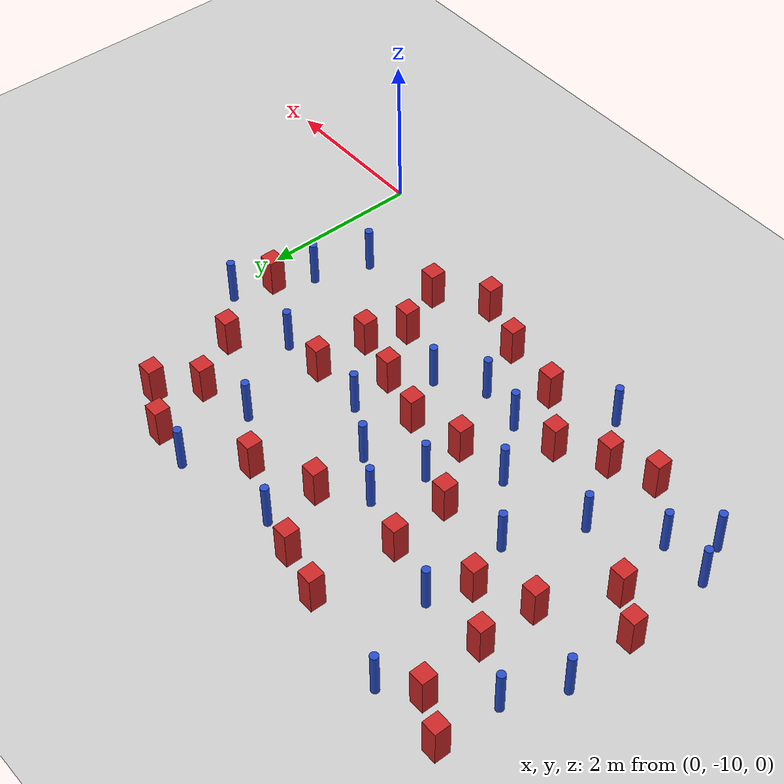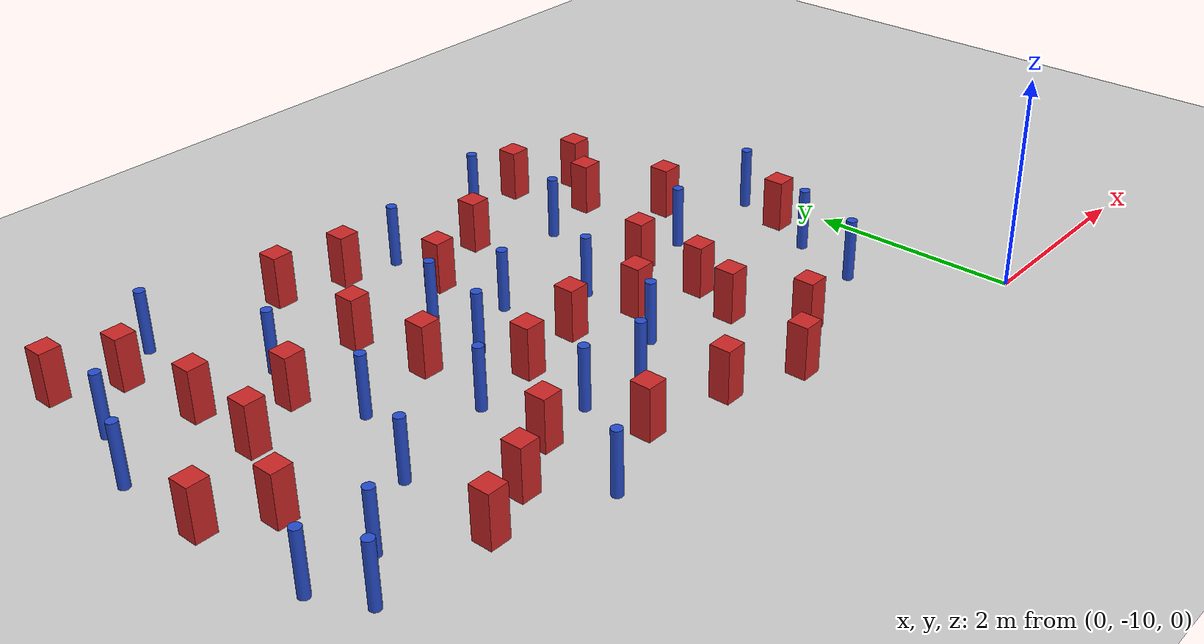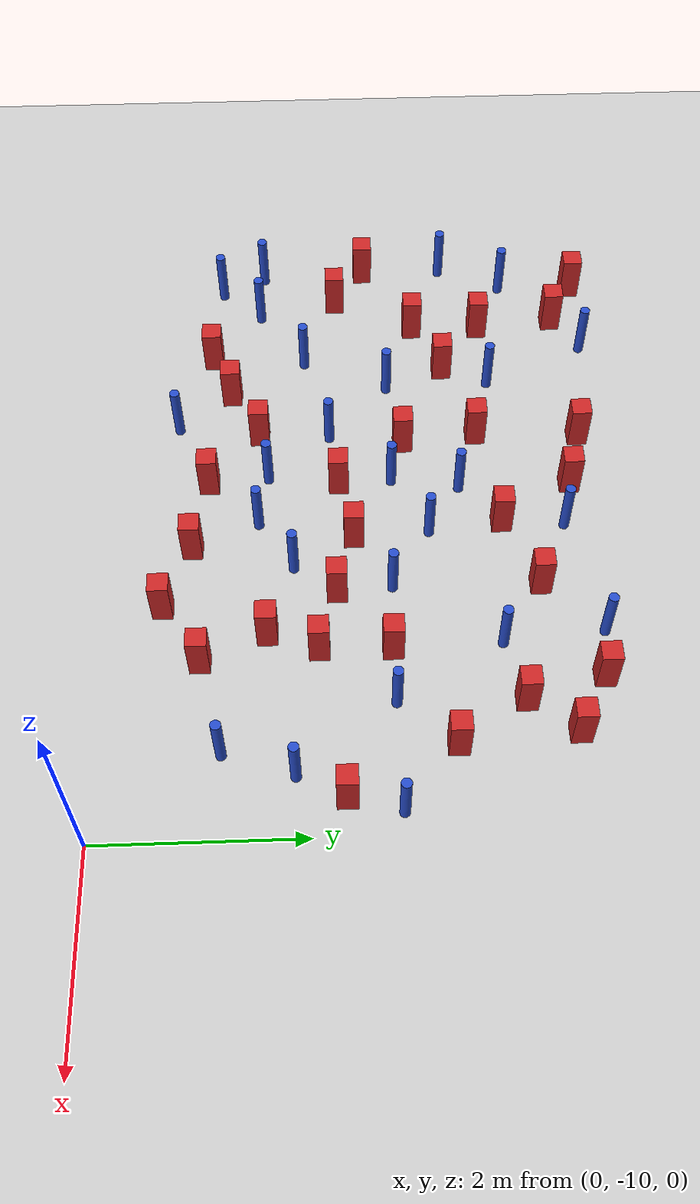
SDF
<sdf version="1.6">
 <world name="default">
  <model name="ground_plane">
   <static>1</static>
   <link name="link">
    <collision name="collision">
     <geometry><plane><normal>0 0 1</normal><size>100 100</size></plane></geometry>
     <surface><friction><ode><mu>100</mu><mu2>50</mu2></ode></friction></surface>
    </collision>
    <visual name="visual">
     <cast_shadows>0</cast_shadows>
     <geometry><plane><normal>0 0 1</normal><size>100 100</size></plane></geometry>
     <material>
      <ambient>1.0 1.0 1.0 1.0</ambient>
      <diffuse>0.8 0.8 0.8 1.0</diffuse>
      <specular>0.01 0.01 0.01 1.000000</specular>
     </material>
    </visual>
   </link>
  </model>
  <model name="pole_obstacle3">
   <static>true</static>
   <pose>-0.223066158163 -7.18615148607 2.88873142074e-08 -9.90536689703e-09 4.60219948992e-07 -1.20965994959e-07</pose>
   <link name="link">
    <pose>0 0 0.3 0 -0 0</pose>
    <inertial>
     <mass>1</mass>
     <inertia><ixx>0.145833</ixx><ixy>0</ixy><ixz>0</ixz><iyy>0.145833</iyy><iyz>0</iyz><izz>0.125</izz></inertia>
    </inertial>
    <collision name="collision">
     <geometry><cylinder><radius>0.05</radius><length>.6</length></cylinder></geometry>
    </collision>
    <visual name="visual">
     <geometry><cylinder><radius>0.05</radius><length>.6</length></cylinder></geometry>
     <material>
      <script><name>Gazebo/Blue</name><uri>file://media/materials/scripts/gazebo.material</uri></script>
     </material>
    </visual>
   </link>
  </model>
  <model name="pole_obstacle4">
   <static>true</static>
   <pose>-5.26204661042 -6.04021006836 2.88873142074e-08 -9.90536690842e-09 4.60219948965e-07 -1.20965994976e-07</pose>
   <link name="link">
    <pose>0 0 0.3 0 -0 0</pose>
    <inertial>
     <mass>1</mass>
     <inertia><ixx>0.145833</ixx><ixy>0</ixy><ixz>0</ixz><iyy>0.145833</iyy><iyz>0</iyz><izz>0.125</izz></inertia>
    </inertial>
    <collision name="collision">
     <geometry><cylinder><radius>0.05</radius><length>.6</length></cylinder></geometry>
    </collision>
    <visual name="visual">
     <geometry><cylinder><radius>0.05</radius><length>.6</length></cylinder></geometry>
     <material>
      <script><name>Gazebo/Blue</name><uri>file://media/materials/scripts/gazebo.material</uri></script>
     </material>
    </visual>
   </link>
  </model>
  <model name="pole_obstacle9">
   <static>true</static>
   <pose>-5.60788954177 -8.01371110021 2.88873142074e-08 -9.9053669103e-09 4.60219948961e-07 -1.20965994981e-07</pose>
   <link name="link">
    <pose>0 0 0.3 0 -0 0</pose>
    <inertial>
     <mass>1</mass>
     <inertia><ixx>0.145833</ixx><ixy>0</ixy><ixz>0</ixz><iyy>0.145833</iyy><iyz>0</iyz><izz>0.125</izz></inertia>
    </inertial>
    <collision name="collision">
     <geometry><cylinder><radius>0.05</radius><length>.6</length></cylinder></geometry>
    </collision>
    <visual name="visual">
     <geometry><cylinder><radius>0.05</radius><length>.6</length></cylinder></geometry>
     <material>
      <script><name>Gazebo/Blue</name><uri>file://media/materials/scripts/gazebo.material</uri></script>
     </material>
    </visual>
   </link>
  </model>
  <model name="square_post_obstacle12">
   <static>true</static>
   <pose>-6.67316931984 -4.98831161575 8.22691968438e-08 7.2212513382e-06 -7.54495500217e-07 2.29674213826e-05</pose>
   <link name="link">
    <pose>0 0 0.25 0 -0 0</pose>
    <inertial>
     <mass>100</mass>
     <inertia>
      <ixx>0.166667</ixx>
      <ixy>0</ixy>
      <ixz>0</ixz>
      <iyy>0.166667</iyy>
      <iyz>0</iyz>
      <izz>0.166667</izz>
     </inertia>
    </inertial>
    <collision name="collision"><geometry><box><size>.2 .2 .5</size></box></geometry></collision>
    <visual name="visual">
     <geometry><box><size>.2 .2 .5</size></box></geometry>
     <material>
      <script><name>Gazebo/Red</name><uri>file://media/materials/scripts/gazebo.material</uri></script>
     </material>
    </visual>
   </link>
  </model>
  <model name="pole_obstacle27">
   <static>true</static>
   <pose>-0.837502243684 -8.82556473664 2.88873142074e-08 -9.90536690779e-09 4.60219948967e-07 -1.20965994975e-07</pose>
   <link name="link">
    <pose>0 0 0.3 0 -0 0</pose>
    <inertial>
     <mass>1</mass>
     <inertia><ixx>0.145833</ixx><ixy>0</ixy><ixz>0</ixz><iyy>0.145833</iyy><iyz>0</iyz><izz>0.125</izz></inertia>
    </inertial>
    <collision name="collision">
     <geometry><cylinder><radius>0.05</radius><length>.6</length></cylinder></geometry>
    </collision>
    <visual name="visual">
     <geometry><cylinder><radius>0.05</radius><length>.6</length></cylinder></geometry>
     <material>
      <script><name>Gazebo/Blue</name><uri>file://media/materials/scripts/gazebo.material</uri></script>
     </material>
    </visual>
   </link>
  </model>
  <model name="square_post_obstacle20">
   <static>true</static>
   <pose>-3.22107593082 -7.54422062104 8.22691968438e-08 7.22125133819e-06 -7.54495500217e-07 2.29674213826e-05</pose>
   <link name="link">
    <pose>0 0 0.25 0 -0 0</pose>
    <inertial>
     <mass>100</mass>
     <inertia>
      <ixx>0.166667</ixx>
      <ixy>0</ixy>
      <ixz>0</ixz>
      <iyy>0.166667</iyy>
      <iyz>0</iyz>
      <izz>0.166667</izz>
     </inertia>
    </inertial>
    <collision name="collision"><geometry><box><size>.2 .2 .5</size></box></geometry></collision>
    <visual name="visual">
     <geometry><box><size>.2 .2 .5</size></box></geometry>
     <material>
      <script><name>Gazebo/Red</name><uri>file://media/materials/scripts/gazebo.material</uri></script>
     </material>
    </visual>
   </link>
  </model>
  <model name="square_post_obstacle21">
   <static>true</static>
   <pose>-1.81002682462 -9.04131203848 8.22691968438e-08 7.22125133819e-06 -7.54495500217e-07 2.29674213826e-05</pose>
   <link name="link">
    <pose>0 0 0.25 0 -0 0</pose>
    <inertial>
     <mass>100</mass>
     <inertia>
      <ixx>0.166667</ixx>
      <ixy>0</ixy>
      <ixz>0</ixz>
      <iyy>0.166667</iyy>
      <iyz>0</iyz>
      <izz>0.166667</izz>
     </inertia>
    </inertial>
    <collision name="collision"><geometry><box><size>.2 .2 .5</size></box></geometry></collision>
    <visual name="visual">
     <geometry><box><size>.2 .2 .5</size></box></geometry>
     <material>
      <script><name>Gazebo/Red</name><uri>file://media/materials/scripts/gazebo.material</uri></script>
     </material>
    </visual>
   </link>
  </model>
  <model name="pole_obstacle30">
   <static>true</static>
   <pose>-2.04442512107 -5.16710961635 2.88873142074e-08 -9.90536689575e-09 4.60219948995e-07 -1.20965994956e-07</pose>
   <link name="link">
    <pose>0 0 0.3 0 -0 0</pose>
    <inertial>
     <mass>1</mass>
     <inertia><ixx>0.145833</ixx><ixy>0</ixy><ixz>0</ixz><iyy>0.145833</iyy><iyz>0</iyz><izz>0.125</izz></inertia>
    </inertial>
    <collision name="collision">
     <geometry><cylinder><radius>0.05</radius><length>.6</length></cylinder></geometry>
    </collision>
    <visual name="visual">
     <geometry><cylinder><radius>0.05</radius><length>.6</length></cylinder></geometry>
     <material>
      <script><name>Gazebo/Blue</name><uri>file://media/materials/scripts/gazebo.material</uri></script>
     </material>
    </visual>
   </link>
  </model>
  <model name="pole_obstacle31">
   <static>true</static>
   <pose>-6.70476680831 -5.78684299509 2.88873142074e-08 -9.90536690842e-09 4.60219948965e-07 -1.20965994976e-07</pose>
   <link name="link">
    <pose>0 0 0.3 0 -0 0</pose>
    <inertial>
     <mass>1</mass>
     <inertia><ixx>0.145833</ixx><ixy>0</ixy><ixz>0</ixz><iyy>0.145833</iyy><iyz>0</iyz><izz>0.125</izz></inertia>
    </inertial>
    <collision name="collision">
     <geometry><cylinder><radius>0.05</radius><length>.6</length></cylinder></geometry>
    </collision>
    <visual name="visual">
     <geometry><cylinder><radius>0.05</radius><length>.6</length></cylinder></geometry>
     <material>
      <script><name>Gazebo/Blue</name><uri>file://media/materials/scripts/gazebo.material</uri></script>
     </material>
    </visual>
   </link>
  </model>
  <model name="square_post_obstacle24">
   <static>true</static>
   <pose>-4.47538757039 -5.15490344327 8.22691968438e-08 7.22125133819e-06 -7.54495500217e-07 2.29674213826e-05</pose>
   <link name="link">
    <pose>0 0 0.25 0 -0 0</pose>
    <inertial>
     <mass>100</mass>
     <inertia>
      <ixx>0.166667</ixx>
      <ixy>0</ixy>
      <ixz>0</ixz>
      <iyy>0.166667</iyy>
      <iyz>0</iyz>
      <izz>0.166667</izz>
     </inertia>
    </inertial>
    <collision name="collision"><geometry><box><size>.2 .2 .5</size></box></geometry></collision>
    <visual name="visual">
     <geometry><box><size>.2 .2 .5</size></box></geometry>
     <material>
      <script><name>Gazebo/Red</name><uri>file://media/materials/scripts/gazebo.material</uri></script>
     </material>
    </visual>
   </link>
  </model>
  <model name="pole_obstacle34">
   <static>true</static>
   <pose>-5.7441308817 -4.97167938966 2.88873142074e-08 -9.90536690842e-09 4.60219948965e-07 -1.20965994976e-07</pose>
   <link name="link">
    <pose>0 0 0.3 0 -0 0</pose>
    <inertial>
     <mass>1</mass>
     <inertia><ixx>0.145833</ixx><ixy>0</ixy><ixz>0</ixz><iyy>0.145833</iyy><iyz>0</iyz><izz>0.125</izz></inertia>
    </inertial>
    <collision name="collision">
     <geometry><cylinder><radius>0.05</radius><length>.6</length></cylinder></geometry>
    </collision>
    <visual name="visual">
     <geometry><cylinder><radius>0.05</radius><length>.6</length></cylinder></geometry>
     <material>
      <script><name>Gazebo/Blue</name><uri>file://media/materials/scripts/gazebo.material</uri></script>
     </material>
    </visual>
   </link>
  </model>
  <model name="square_post_obstacle34">
   <static>true</static>
   <pose>-6.50050032817 -7.66148644003 8.22691968438e-08 7.22125133819e-06 -7.54495500217e-07 2.29674213826e-05</pose>
   <link name="link">
    <pose>0 0 0.25 0 -0 0</pose>
    <inertial>
     <mass>100</mass>
     <inertia>
      <ixx>0.166667</ixx>
      <ixy>0</ixy>
      <ixz>0</ixz>
      <iyy>0.166667</iyy>
      <iyz>0</iyz>
      <izz>0.166667</izz>
     </inertia>
    </inertial>
    <collision name="collision"><geometry><box><size>.2 .2 .5</size></box></geometry></collision>
    <visual name="visual">
     <geometry><box><size>.2 .2 .5</size></box></geometry>
     <material>
      <script><name>Gazebo/Red</name><uri>file://media/materials/scripts/gazebo.material</uri></script>
     </material>
    </visual>
   </link>
  </model>
  <model name="pole_obstacle51">
   <static>true</static>
   <pose>-5.21629315074 -7.13534956996 2.88873142074e-08 -9.90536690842e-09 4.60219948965e-07 -1.20965994976e-07</pose>
   <link name="link">
    <pose>0 0 0.3 0 -0 0</pose>
    <inertial>
     <mass>1</mass>
     <inertia><ixx>0.145833</ixx><ixy>0</ixy><ixz>0</ixz><iyy>0.145833</iyy><iyz>0</iyz><izz>0.125</izz></inertia>
    </inertial>
    <collision name="collision">
     <geometry><cylinder><radius>0.05</radius><length>.6</length></cylinder></geometry>
    </collision>
    <visual name="visual">
     <geometry><cylinder><radius>0.05</radius><length>.6</length></cylinder></geometry>
     <material>
      <script><name>Gazebo/Blue</name><uri>file://media/materials/scripts/gazebo.material</uri></script>
     </material>
    </visual>
   </link>
  </model>
  <model name="square_post_obstacle41">
   <static>true</static>
   <pose>-6.15954790903 -5.25882143973 8.22691968438e-08 7.2212513382e-06 -7.54495500217e-07 2.29674213826e-05</pose>
   <link name="link">
    <pose>0 0 0.25 0 -0 0</pose>
    <inertial>
     <mass>100</mass>
     <inertia>
      <ixx>0.166667</ixx>
      <ixy>0</ixy>
      <ixz>0</ixz>
      <iyy>0.166667</iyy>
      <iyz>0</iyz>
      <izz>0.166667</izz>
     </inertia>
    </inertial>
    <collision name="collision"><geometry><box><size>.2 .2 .5</size></box></geometry></collision>
    <visual name="visual">
     <geometry><box><size>.2 .2 .5</size></box></geometry>
     <material>
      <script><name>Gazebo/Red</name><uri>file://media/materials/scripts/gazebo.material</uri></script>
     </material>
    </visual>
   </link>
  </model>
  <model name="square_post_obstacle44">
   <static>true</static>
   <pose>-3.36562278882 -6.0526083925 8.22691968438e-08 7.2212513382e-06 -7.54495500217e-07 2.29674213826e-05</pose>
   <link name="link">
    <pose>0 0 0.25 0 -0 0</pose>
    <inertial>
     <mass>100</mass>
     <inertia>
      <ixx>0.166667</ixx>
      <ixy>0</ixy>
      <ixz>0</ixz>
      <iyy>0.166667</iyy>
      <iyz>0</iyz>
      <izz>0.166667</izz>
     </inertia>
    </inertial>
    <collision name="collision"><geometry><box><size>.2 .2 .5</size></box></geometry></collision>
    <visual name="visual">
     <geometry><box><size>.2 .2 .5</size></box></geometry>
     <material>
      <script><name>Gazebo/Red</name><uri>file://media/materials/scripts/gazebo.material</uri></script>
     </material>
    </visual>
   </link>
  </model>
  <model name="pole_obstacle59">
   <static>true</static>
   <pose>-1.32819660499 -7.20236095923 2.88873142074e-08 -9.90536689852e-09 4.60219948989e-07 -1.2096599496e-07</pose>
   <link name="link">
    <pose>0 0 0.3 0 -0 0</pose>
    <inertial>
     <mass>1</mass>
     <inertia><ixx>0.145833</ixx><ixy>0</ixy><ixz>0</ixz><iyy>0.145833</iyy><iyz>0</iyz><izz>0.125</izz></inertia>
    </inertial>
    <collision name="collision">
     <geometry><cylinder><radius>0.05</radius><length>.6</length></cylinder></geometry>
    </collision>
    <visual name="visual">
     <geometry><cylinder><radius>0.05</radius><length>.6</length></cylinder></geometry>
     <material>
      <script><name>Gazebo/Blue</name><uri>file://media/materials/scripts/gazebo.material</uri></script>
     </material>
    </visual>
   </link>
  </model>
  <model name="pole_obstacle64">
   <static>true</static>
   <pose>-4.00807438175 -8.39927882786 2.88873142074e-08 -9.90536689695e-09 4.60219948993e-07 -1.20965994957e-07</pose>
   <link name="link">
    <pose>0 0 0.3 0 -0 0</pose>
    <inertial>
     <mass>1</mass>
     <inertia><ixx>0.145833</ixx><ixy>0</ixy><ixz>0</ixz><iyy>0.145833</iyy><iyz>0</iyz><izz>0.125</izz></inertia>
    </inertial>
    <collision name="collision">
     <geometry><cylinder><radius>0.05</radius><length>.6</length></cylinder></geometry>
    </collision>
    <visual name="visual">
     <geometry><cylinder><radius>0.05</radius><length>.6</length></cylinder></geometry>
     <material>
      <script><name>Gazebo/Blue</name><uri>file://media/materials/scripts/gazebo.material</uri></script>
     </material>
    </visual>
   </link>
  </model>
  <model name="square_post_obstacle50">
   <static>true</static>
   <pose>-2.59788997025 -5.73417965652 8.22691968438e-08 7.2212513382e-06 -7.54495500217e-07 2.29674213826e-05</pose>
   <link name="link">
    <pose>0 0 0.25 0 -0 0</pose>
    <inertial>
     <mass>100</mass>
     <inertia>
      <ixx>0.166667</ixx>
      <ixy>0</ixy>
      <ixz>0</ixz>
      <iyy>0.166667</iyy>
      <iyz>0</iyz>
      <izz>0.166667</izz>
     </inertia>
    </inertial>
    <collision name="collision"><geometry><box><size>.2 .2 .5</size></box></geometry></collision>
    <visual name="visual">
     <geometry><box><size>.2 .2 .5</size></box></geometry>
     <material>
      <script><name>Gazebo/Red</name><uri>file://media/materials/scripts/gazebo.material</uri></script>
     </material>
    </visual>
   </link>
  </model>
  <model name="square_post_obstacle56">
   <static>true</static>
   <pose>-2.43400660663 -9.41999604963 8.22691968438e-08 7.22125133819e-06 -7.54495500217e-07 2.29674213826e-05</pose>
   <link name="link">
    <pose>0 0 0.25 0 -0 0</pose>
    <inertial>
     <mass>100</mass>
     <inertia>
      <ixx>0.166667</ixx>
      <ixy>0</ixy>
      <ixz>0</ixz>
      <iyy>0.166667</iyy>
      <iyz>0</iyz>
      <izz>0.166667</izz>
     </inertia>
    </inertial>
    <collision name="collision"><geometry><box><size>.2 .2 .5</size></box></geometry></collision>
    <visual name="visual">
     <geometry><box><size>.2 .2 .5</size></box></geometry>
     <material>
      <script><name>Gazebo/Red</name><uri>file://media/materials/scripts/gazebo.material</uri></script>
     </material>
    </visual>
   </link>
  </model>
  <model name="square_post_obstacle63">
   <static>true</static>
   <pose>-3.90803161271 -7.68037870502 8.22691968438e-08 7.2212513382e-06 -7.54495500217e-07 2.29674213826e-05</pose>
   <link name="link">
    <pose>0 0 0.25 0 -0 0</pose>
    <inertial>
     <mass>100</mass>
     <inertia>
      <ixx>0.166667</ixx>
      <ixy>0</ixy>
      <ixz>0</ixz>
      <iyy>0.166667</iyy>
      <iyz>0</iyz>
      <izz>0.166667</izz>
     </inertia>
    </inertial>
    <collision name="collision"><geometry><box><size>.2 .2 .5</size></box></geometry></collision>
    <visual name="visual">
     <geometry><box><size>.2 .2 .5</size></box></geometry>
     <material>
      <script><name>Gazebo/Red</name><uri>file://media/materials/scripts/gazebo.material</uri></script>
     </material>
    </visual>
   </link>
  </model>
  <model name="square_post_obstacle67">
   <static>true</static>
   <pose>-6.08234963987 -6.8171789613 8.22691968438e-08 7.22125133819e-06 -7.54495500217e-07 2.29674213826e-05</pose>
   <link name="link">
    <pose>0 0 0.25 0 -0 0</pose>
    <inertial>
     <mass>100</mass>
     <inertia>
      <ixx>0.166667</ixx>
      <ixy>0</ixy>
      <ixz>0</ixz>
      <iyy>0.166667</iyy>
      <iyz>0</iyz>
      <izz>0.166667</izz>
     </inertia>
    </inertial>
    <collision name="collision"><geometry><box><size>.2 .2 .5</size></box></geometry></collision>
    <visual name="visual">
     <geometry><box><size>.2 .2 .5</size></box></geometry>
     <material>
      <script><name>Gazebo/Red</name><uri>file://media/materials/scripts/gazebo.material</uri></script>
     </material>
    </visual>
   </link>
  </model>
  <model name="square_post_obstacle69">
   <static>true</static>
   <pose>-4.52393376365 -6.23044830346 8.22691968438e-08 7.22125133819e-06 -7.54495500217e-07 2.29674213826e-05</pose>
   <link name="link">
    <pose>0 0 0.25 0 -0 0</pose>
    <inertial>
     <mass>100</mass>
     <inertia>
      <ixx>0.166667</ixx>
      <ixy>0</ixy>
      <ixz>0</ixz>
      <iyy>0.166667</iyy>
      <iyz>0</iyz>
      <izz>0.166667</izz>
     </inertia>
    </inertial>
    <collision name="collision"><geometry><box><size>.2 .2 .5</size></box></geometry></collision>
    <visual name="visual">
     <geometry><box><size>.2 .2 .5</size></box></geometry>
     <material>
      <script><name>Gazebo/Red</name><uri>file://media/materials/scripts/gazebo.material</uri></script>
     </material>
    </visual>
   </link>
  </model>
  <model name="square_post_obstacle72">
   <static>true</static>
   <pose>-1.91232794167 -7.91192172238 8.22691968438e-08 7.2212513382e-06 -7.54495500217e-07 2.29674213826e-05</pose>
   <link name="link">
    <pose>0 0 0.25 0 -0 0</pose>
    <inertial>
     <mass>100</mass>
     <inertia>
      <ixx>0.166667</ixx>
      <ixy>0</ixy>
      <ixz>0</ixz>
      <iyy>0.166667</iyy>
      <iyz>0</iyz>
      <izz>0.166667</izz>
     </inertia>
    </inertial>
    <collision name="collision"><geometry><box><size>.2 .2 .5</size></box></geometry></collision>
    <visual name="visual">
     <geometry><box><size>.2 .2 .5</size></box></geometry>
     <material>
      <script><name>Gazebo/Red</name><uri>file://media/materials/scripts/gazebo.material</uri></script>
     </material>
    </visual>
   </link>
  </model>
  <model name="square_post_obstacle73">
   <static>true</static>
   <pose>-2.09549040501 -8.40527677839 8.22691968438e-08 7.22125133819e-06 -7.54495500217e-07 2.29674213826e-05</pose>
   <link name="link">
    <pose>0 0 0.25 0 -0 0</pose>
    <inertial>
     <mass>100</mass>
     <inertia>
      <ixx>0.166667</ixx>
      <ixy>0</ixy>
      <ixz>0</ixz>
      <iyy>0.166667</iyy>
      <iyz>0</iyz>
      <izz>0.166667</izz>
     </inertia>
    </inertial>
    <collision name="collision"><geometry><box><size>.2 .2 .5</size></box></geometry></collision>
    <visual name="visual">
     <geometry><box><size>.2 .2 .5</size></box></geometry>
     <material>
      <script><name>Gazebo/Red</name><uri>file://media/materials/scripts/gazebo.material</uri></script>
     </material>
    </visual>
   </link>
  </model>
  <model name="pole_obstacle89">
   <static>true</static>
   <pose>-6.93271477996 -8.45229221908 2.88873142074e-08 -9.9053668967e-09 4.60219948993e-07 -1.20965994957e-07</pose>
   <link name="link">
    <pose>0 0 0.3 0 -0 0</pose>
    <inertial>
     <mass>1</mass>
     <inertia><ixx>0.145833</ixx><ixy>0</ixy><ixz>0</ixz><iyy>0.145833</iyy><iyz>0</iyz><izz>0.125</izz></inertia>
    </inertial>
    <collision name="collision">
     <geometry><cylinder><radius>0.05</radius><length>.6</length></cylinder></geometry>
    </collision>
    <visual name="visual">
     <geometry><cylinder><radius>0.05</radius><length>.6</length></cylinder></geometry>
     <material>
      <script><name>Gazebo/Blue</name><uri>file://media/materials/scripts/gazebo.material</uri></script>
     </material>
    </visual>
   </link>
  </model>
  <model name="square_post_obstacle84">
   <static>true</static>
   <pose>-6.06612855636 -6.09165747957 8.22691968438e-08 7.22125133819e-06 -7.54495500217e-07 2.29674213826e-05</pose>
   <link name="link">
    <pose>0 0 0.25 0 -0 0</pose>
    <inertial>
     <mass>100</mass>
     <inertia>
      <ixx>0.166667</ixx>
      <ixy>0</ixy>
      <ixz>0</ixz>
      <iyy>0.166667</iyy>
      <iyz>0</iyz>
      <izz>0.166667</izz>
     </inertia>
    </inertial>
    <collision name="collision"><geometry><box><size>.2 .2 .5</size></box></geometry></collision>
    <visual name="visual">
     <geometry><box><size>.2 .2 .5</size></box></geometry>
     <material>
      <script><name>Gazebo/Red</name><uri>file://media/materials/scripts/gazebo.material</uri></script>
     </material>
    </visual>
   </link>
  </model>
  <model name="square_post_obstacle92">
   <static>true</static>
   <pose>-4.57741586438 -8.4903269476 8.22691968438e-08 7.22125133819e-06 -7.54495500217e-07 2.29674213826e-05</pose>
   <link name="link">
    <pose>0 0 0.25 0 -0 0</pose>
    <inertial>
     <mass>100</mass>
     <inertia>
      <ixx>0.166667</ixx>
      <ixy>0</ixy>
      <ixz>0</ixz>
      <iyy>0.166667</iyy>
      <iyz>0</iyz>
      <izz>0.166667</izz>
     </inertia>
    </inertial>
    <collision name="collision"><geometry><box><size>.2 .2 .5</size></box></geometry></collision>
    <visual name="visual">
     <geometry><box><size>.2 .2 .5</size></box></geometry>
     <material>
      <script><name>Gazebo/Red</name><uri>file://media/materials/scripts/gazebo.material</uri></script>
     </material>
    </visual>
   </link>
  </model>
  <model name="square_post_obstacle102">
   <static>true</static>
   <pose>-5.46062341923 -6.52494316994 8.22691968438e-08 7.22125133819e-06 -7.54495500217e-07 2.29674213826e-05</pose>
   <link name="link">
    <pose>0 0 0.25 0 -0 0</pose>
    <inertial>
     <mass>100</mass>
     <inertia>
      <ixx>0.166667</ixx>
      <ixy>0</ixy>
      <ixz>0</ixz>
      <iyy>0.166667</iyy>
      <iyz>0</iyz>
      <izz>0.166667</izz>
     </inertia>
    </inertial>
    <collision name="collision"><geometry><box><size>.2 .2 .5</size></box></geometry></collision>
    <visual name="visual">
     <geometry><box><size>.2 .2 .5</size></box></geometry>
     <material>
      <script><name>Gazebo/Red</name><uri>file://media/materials/scripts/gazebo.material</uri></script>
     </material>
    </visual>
   </link>
  </model>
  <model name="pole_obstacle110">
   <static>true</static>
   <pose>-1.94352824262 -6.15617587901 2.88873142074e-08 -9.90536689852e-09 4.60219948989e-07 -1.2096599496e-07</pose>
   <link name="link">
    <pose>0 0 0.3 0 -0 0</pose>
    <inertial>
     <mass>1</mass>
     <inertia><ixx>0.145833</ixx><ixy>0</ixy><ixz>0</ixz><iyy>0.145833</iyy><iyz>0</iyz><izz>0.125</izz></inertia>
    </inertial>
    <collision name="collision">
     <geometry><cylinder><radius>0.05</radius><length>.6</length></cylinder></geometry>
    </collision>
    <visual name="visual">
     <geometry><cylinder><radius>0.05</radius><length>.6</length></cylinder></geometry>
     <material>
      <script><name>Gazebo/Blue</name><uri>file://media/materials/scripts/gazebo.material</uri></script>
     </material>
    </visual>
   </link>
  </model>
  <model name="square_post_obstacle116">
   <static>true</static>
   <pose>-3.9460176643 -9.00568329268 8.22691968438e-08 7.22125133819e-06 -7.54495500217e-07 2.29674213826e-05</pose>
   <link name="link">
    <pose>0 0 0.25 0 -0 0</pose>
    <inertial>
     <mass>100</mass>
     <inertia>
      <ixx>0.166667</ixx>
      <ixy>0</ixy>
      <ixz>0</ixz>
      <iyy>0.166667</iyy>
      <iyz>0</iyz>
      <izz>0.166667</izz>
     </inertia>
    </inertial>
    <collision name="collision"><geometry><box><size>.2 .2 .5</size></box></geometry></collision>
    <visual name="visual">
     <geometry><box><size>.2 .2 .5</size></box></geometry>
     <material>
      <script><name>Gazebo/Red</name><uri>file://media/materials/scripts/gazebo.material</uri></script>
     </material>
    </visual>
   </link>
  </model>
  <model name="pole_obstacle127">
   <static>true</static>
   <pose>-3.83018053656 -6.4494835053 2.88873142074e-08 -9.90536692062e-09 4.60219948937e-07 -1.20965994985e-07</pose>
   <link name="link">
    <pose>0 0 0.3 0 -0 0</pose>
    <inertial>
     <mass>1</mass>
     <inertia><ixx>0.145833</ixx><ixy>0</ixy><ixz>0</ixz><iyy>0.145833</iyy><iyz>0</iyz><izz>0.125</izz></inertia>
    </inertial>
    <collision name="collision">
     <geometry><cylinder><radius>0.05</radius><length>.6</length></cylinder></geometry>
    </collision>
    <visual name="visual">
     <geometry><cylinder><radius>0.05</radius><length>.6</length></cylinder></geometry>
     <material>
      <script><name>Gazebo/Blue</name><uri>file://media/materials/scripts/gazebo.material</uri></script>
     </material>
    </visual>
   </link>
  </model>
  <model name="pole_obstacle130">
   <static>true</static>
   <pose>-4.5441203361 -7.76259152587 2.88873142074e-08 -9.90536690842e-09 4.60219948965e-07 -1.20965994976e-07</pose>
   <link name="link">
    <pose>0 0 0.3 0 -0 0</pose>
    <inertial>
     <mass>1</mass>
     <inertia><ixx>0.145833</ixx><ixy>0</ixy><ixz>0</ixz><iyy>0.145833</iyy><iyz>0</iyz><izz>0.125</izz></inertia>
    </inertial>
    <collision name="collision">
     <geometry><cylinder><radius>0.05</radius><length>.6</length></cylinder></geometry>
    </collision>
    <visual name="visual">
     <geometry><cylinder><radius>0.05</radius><length>.6</length></cylinder></geometry>
     <material>
      <script><name>Gazebo/Blue</name><uri>file://media/materials/scripts/gazebo.material</uri></script>
     </material>
    </visual>
   </link>
  </model>
  <model name="square_post_obstacle128">
   <static>true</static>
   <pose>-0.865066713087 -6.66235088703 8.22691968438e-08 7.22125133819e-06 -7.54495500217e-07 2.29674213826e-05</pose>
   <link name="link">
    <pose>0 0 0.25 0 -0 0</pose>
    <inertial>
     <mass>100</mass>
     <inertia>
      <ixx>0.166667</ixx>
      <ixy>0</ixy>
      <ixz>0</ixz>
      <iyy>0.166667</iyy>
      <iyz>0</iyz>
      <izz>0.166667</izz>
     </inertia>
    </inertial>
    <collision name="collision"><geometry><box><size>.2 .2 .5</size></box></geometry></collision>
    <visual name="visual">
     <geometry><box><size>.2 .2 .5</size></box></geometry>
     <material>
      <script><name>Gazebo/Red</name><uri>file://media/materials/scripts/gazebo.material</uri></script>
     </material>
    </visual>
   </link>
  </model>
  <model name="pole_obstacle132">
   <static>true</static>
   <pose>-3.28043317536 -6.78685770871 2.88873142074e-08 -9.90536689859e-09 4.60219948989e-07 -1.20965994961e-07</pose>
   <link name="link">
    <pose>0 0 0.3 0 -0 0</pose>
    <inertial>
     <mass>1</mass>
     <inertia><ixx>0.145833</ixx><ixy>0</ixy><ixz>0</ixz><iyy>0.145833</iyy><iyz>0</iyz><izz>0.125</izz></inertia>
    </inertial>
    <collision name="collision">
     <geometry><cylinder><radius>0.05</radius><length>.6</length></cylinder></geometry>
    </collision>
    <visual name="visual">
     <geometry><cylinder><radius>0.05</radius><length>.6</length></cylinder></geometry>
     <material>
      <script><name>Gazebo/Blue</name><uri>file://media/materials/scripts/gazebo.material</uri></script>
     </material>
    </visual>
   </link>
  </model>
  <model name="pole_obstacle140">
   <static>true</static>
   <pose>-3.4272849136 -8.49736121348 2.88873142074e-08 -9.9053668994e-09 4.60219948987e-07 -1.20965994963e-07</pose>
   <link name="link">
    <pose>0 0 0.3 0 -0 0</pose>
    <inertial>
     <mass>1</mass>
     <inertia><ixx>0.145833</ixx><ixy>0</ixy><ixz>0</ixz><iyy>0.145833</iyy><iyz>0</iyz><izz>0.125</izz></inertia>
    </inertial>
    <collision name="collision">
     <geometry><cylinder><radius>0.05</radius><length>.6</length></cylinder></geometry>
    </collision>
    <visual name="visual">
     <geometry><cylinder><radius>0.05</radius><length>.6</length></cylinder></geometry>
     <material>
      <script><name>Gazebo/Blue</name><uri>file://media/materials/scripts/gazebo.material</uri></script>
     </material>
    </visual>
   </link>
  </model>
  <model name="pole_obstacle143">
   <static>true</static>
   <pose>-6.324874851 -8.4896090552 2.88873142074e-08 -9.9053668967e-09 4.60219948993e-07 -1.20965994957e-07</pose>
   <link name="link">
    <pose>0 0 0.3 0 -0 0</pose>
    <inertial>
     <mass>1</mass>
     <inertia><ixx>0.145833</ixx><ixy>0</ixy><ixz>0</ixz><iyy>0.145833</iyy><iyz>0</iyz><izz>0.125</izz></inertia>
    </inertial>
    <collision name="collision">
     <geometry><cylinder><radius>0.05</radius><length>.6</length></cylinder></geometry>
    </collision>
    <visual name="visual">
     <geometry><cylinder><radius>0.05</radius><length>.6</length></cylinder></geometry>
     <material>
      <script><name>Gazebo/Blue</name><uri>file://media/materials/scripts/gazebo.material</uri></script>
     </material>
    </visual>
   </link>
  </model>
  <model name="pole_obstacle147">
   <static>true</static>
   <pose>-0.601232392313 -8.14643199761 2.88873142074e-08 -9.90536690779e-09 4.60219948967e-07 -1.20965994975e-07</pose>
   <link name="link">
    <pose>0 0 0.3 0 -0 0</pose>
    <inertial>
     <mass>1</mass>
     <inertia><ixx>0.145833</ixx><ixy>0</ixy><ixz>0</ixz><iyy>0.145833</iyy><iyz>0</iyz><izz>0.125</izz></inertia>
    </inertial>
    <collision name="collision">
     <geometry><cylinder><radius>0.05</radius><length>.6</length></cylinder></geometry>
    </collision>
    <visual name="visual">
     <geometry><cylinder><radius>0.05</radius><length>.6</length></cylinder></geometry>
     <material>
      <script><name>Gazebo/Blue</name><uri>file://media/materials/scripts/gazebo.material</uri></script>
     </material>
    </visual>
   </link>
  </model>
  <model name="square_post_obstacle142">
   <static>true</static>
   <pose>-4.43726580871 -6.99938158751 8.22691968438e-08 7.22125133819e-06 -7.54495500217e-07 2.29674213826e-05</pose>
   <link name="link">
    <pose>0 0 0.25 0 -0 0</pose>
    <inertial>
     <mass>100</mass>
     <inertia>
      <ixx>0.166667</ixx>
      <ixy>0</ixy>
      <ixz>0</ixz>
      <iyy>0.166667</iyy>
      <iyz>0</iyz>
      <izz>0.166667</izz>
     </inertia>
    </inertial>
    <collision name="collision"><geometry><box><size>.2 .2 .5</size></box></geometry></collision>
    <visual name="visual">
     <geometry><box><size>.2 .2 .5</size></box></geometry>
     <material>
      <script><name>Gazebo/Red</name><uri>file://media/materials/scripts/gazebo.material</uri></script>
     </material>
    </visual>
   </link>
  </model>
  <model name="square_post_obstacle143">
   <static>true</static>
   <pose>-1.30293437076 -5.99849394707 8.22691968438e-08 7.2212513382e-06 -7.54495500217e-07 2.29674213826e-05</pose>
   <link name="link">
    <pose>0 0 0.25 0 -0 0</pose>
    <inertial>
     <mass>100</mass>
     <inertia>
      <ixx>0.166667</ixx>
      <ixy>0</ixy>
      <ixz>0</ixz>
      <iyy>0.166667</iyy>
      <iyz>0</iyz>
      <izz>0.166667</izz>
     </inertia>
    </inertial>
    <collision name="collision"><geometry><box><size>.2 .2 .5</size></box></geometry></collision>
    <visual name="visual">
     <geometry><box><size>.2 .2 .5</size></box></geometry>
     <material>
      <script><name>Gazebo/Red</name><uri>file://media/materials/scripts/gazebo.material</uri></script>
     </material>
    </visual>
   </link>
  </model>
  <model name="pole_obstacle150">
   <static>true</static>
   <pose>-2.88010121451 -8.14850513174 2.88873142074e-08 -9.90536692318e-09 4.6021994893e-07 -1.20965994988e-07</pose>
   <link name="link">
    <pose>0 0 0.3 0 -0 0</pose>
    <inertial>
     <mass>1</mass>
     <inertia><ixx>0.145833</ixx><ixy>0</ixy><ixz>0</ixz><iyy>0.145833</iyy><iyz>0</iyz><izz>0.125</izz></inertia>
    </inertial>
    <collision name="collision">
     <geometry><cylinder><radius>0.05</radius><length>.6</length></cylinder></geometry>
    </collision>
    <visual name="visual">
     <geometry><cylinder><radius>0.05</radius><length>.6</length></cylinder></geometry>
     <material>
      <script><name>Gazebo/Blue</name><uri>file://media/materials/scripts/gazebo.material</uri></script>
     </material>
    </visual>
   </link>
  </model>
  <model name="square_post_obstacle146">
   <static>true</static>
   <pose>-6.97793107018 -7.33755863123 8.22691968438e-08 7.22125133819e-06 -7.54495500217e-07 2.29674213826e-05</pose>
   <link name="link">
    <pose>0 0 0.25 0 -0 0</pose>
    <inertial>
     <mass>100</mass>
     <inertia>
      <ixx>0.166667</ixx>
      <ixy>0</ixy>
      <ixz>0</ixz>
      <iyy>0.166667</iyy>
      <iyz>0</iyz>
      <izz>0.166667</izz>
     </inertia>
    </inertial>
    <collision name="collision"><geometry><box><size>.2 .2 .5</size></box></geometry></collision>
    <visual name="visual">
     <geometry><box><size>.2 .2 .5</size></box></geometry>
     <material>
      <script><name>Gazebo/Red</name><uri>file://media/materials/scripts/gazebo.material</uri></script>
     </material>
    </visual>
   </link>
  </model>
  <model name="square_post_obstacle147">
   <static>true</static>
   <pose>-0.954772902131 -5.5387033319 8.22691968438e-08 7.22125133819e-06 -7.54495500217e-07 2.29674213826e-05</pose>
   <link name="link">
    <pose>0 0 0.25 0 -0 0</pose>
    <inertial>
     <mass>100</mass>
     <inertia>
      <ixx>0.166667</ixx>
      <ixy>0</ixy>
      <ixz>0</ixz>
      <iyy>0.166667</iyy>
      <iyz>0</iyz>
      <izz>0.166667</izz>
     </inertia>
    </inertial>
    <collision name="collision"><geometry><box><size>.2 .2 .5</size></box></geometry></collision>
    <visual name="visual">
     <geometry><box><size>.2 .2 .5</size></box></geometry>
     <material>
      <script><name>Gazebo/Red</name><uri>file://media/materials/scripts/gazebo.material</uri></script>
     </material>
    </visual>
   </link>
  </model>
  <model name="pole_obstacle157">
   <static>true</static>
   <pose>-2.61952534162 -7.1836974123 2.88873142074e-08 -9.90536689859e-09 4.60219948989e-07 -1.20965994961e-07</pose>
   <link name="link">
    <pose>0 0 0.3 0 -0 0</pose>
    <inertial>
     <mass>1</mass>
     <inertia><ixx>0.145833</ixx><ixy>0</ixy><ixz>0</ixz><iyy>0.145833</iyy><iyz>0</iyz><izz>0.125</izz></inertia>
    </inertial>
    <collision name="collision">
     <geometry><cylinder><radius>0.05</radius><length>.6</length></cylinder></geometry>
    </collision>
    <visual name="visual">
     <geometry><cylinder><radius>0.05</radius><length>.6</length></cylinder></geometry>
     <material>
      <script><name>Gazebo/Blue</name><uri>file://media/materials/scripts/gazebo.material</uri></script>
     </material>
    </visual>
   </link>
  </model>
  <model name="square_post_obstacle156">
   <static>true</static>
   <pose>-5.68149247623 -8.99655071898 8.22691968438e-08 7.2212513382e-06 -7.54495500217e-07 2.29674213826e-05</pose>
   <link name="link">
    <pose>0 0 0.25 0 -0 0</pose>
    <inertial>
     <mass>100</mass>
     <inertia>
      <ixx>0.166667</ixx>
      <ixy>0</ixy>
      <ixz>0</ixz>
      <iyy>0.166667</iyy>
      <iyz>0</iyz>
      <izz>0.166667</izz>
     </inertia>
    </inertial>
    <collision name="collision"><geometry><box><size>.2 .2 .5</size></box></geometry></collision>
    <visual name="visual">
     <geometry><box><size>.2 .2 .5</size></box></geometry>
     <material>
      <script><name>Gazebo/Red</name><uri>file://media/materials/scripts/gazebo.material</uri></script>
     </material>
    </visual>
   </link>
  </model>
  <model name="square_post_obstacle161">
   <static>true</static>
   <pose>-1.90116378879 -7.2120499493 8.22691968438e-08 7.2212513382e-06 -7.54495500217e-07 2.29674213826e-05</pose>
   <link name="link">
    <pose>0 0 0.25 0 -0 0</pose>
    <inertial>
     <mass>100</mass>
     <inertia>
      <ixx>0.166667</ixx>
      <ixy>0</ixy>
      <ixz>0</ixz>
      <iyy>0.166667</iyy>
      <iyz>0</iyz>
      <izz>0.166667</izz>
     </inertia>
    </inertial>
    <collision name="collision"><geometry><box><size>.2 .2 .5</size></box></geometry></collision>
    <visual name="visual">
     <geometry><box><size>.2 .2 .5</size></box></geometry>
     <material>
      <script><name>Gazebo/Red</name><uri>file://media/materials/scripts/gazebo.material</uri></script>
     </material>
    </visual>
   </link>
  </model>
  <model name="square_post_obstacle166">
   <static>true</static>
   <pose>-5.14534859175 -8.78997418732 8.22691968438e-08 7.2212513382e-06 -7.54495500217e-07 2.29674213826e-05</pose>
   <link name="link">
    <pose>0 0 0.25 0 -0 0</pose>
    <inertial>
     <mass>100</mass>
     <inertia>
      <ixx>0.166667</ixx>
      <ixy>0</ixy>
      <ixz>0</ixz>
      <iyy>0.166667</iyy>
      <iyz>0</iyz>
      <izz>0.166667</izz>
     </inertia>
    </inertial>
    <collision name="collision"><geometry><box><size>.2 .2 .5</size></box></geometry></collision>
    <visual name="visual">
     <geometry><box><size>.2 .2 .5</size></box></geometry>
     <material>
      <script><name>Gazebo/Red</name><uri>file://media/materials/scripts/gazebo.material</uri></script>
     </material>
    </visual>
   </link>
  </model>
  <model name="square_post_obstacle170">
   <static>true</static>
   <pose>-0.371847078628 -7.68886999674 8.22691968438e-08 7.22125133819e-06 -7.54495500217e-07 2.29674213826e-05</pose>
   <link name="link">
    <pose>0 0 0.25 0 -0 0</pose>
    <inertial>
     <mass>100</mass>
     <inertia>
      <ixx>0.166667</ixx>
      <ixy>0</ixy>
      <ixz>0</ixz>
      <iyy>0.166667</iyy>
      <iyz>0</iyz>
      <izz>0.166667</izz>
     </inertia>
    </inertial>
    <collision name="collision"><geometry><box><size>.2 .2 .5</size></box></geometry></collision>
    <visual name="visual">
     <geometry><box><size>.2 .2 .5</size></box></geometry>
     <material>
      <script><name>Gazebo/Red</name><uri>file://media/materials/scripts/gazebo.material</uri></script>
     </material>
    </visual>
   </link>
  </model>
  <model name="square_post_obstacle174">
   <static>true</static>
   <pose>-3.84404172384 -5.31027263544 8.22691968438e-08 7.22125133819e-06 -7.54495500217e-07 2.29674213826e-05</pose>
   <link name="link">
    <pose>0 0 0.25 0 -0 0</pose>
    <inertial>
     <mass>100</mass>
     <inertia>
      <ixx>0.166667</ixx>
      <ixy>0</ixy>
      <ixz>0</ixz>
      <iyy>0.166667</iyy>
      <iyz>0</iyz>
      <izz>0.166667</izz>
     </inertia>
    </inertial>
    <collision name="collision"><geometry><box><size>.2 .2 .5</size></box></geometry></collision>
    <visual name="visual">
     <geometry><box><size>.2 .2 .5</size></box></geometry>
     <material>
      <script><name>Gazebo/Red</name><uri>file://media/materials/scripts/gazebo.material</uri></script>
     </material>
    </visual>
   </link>
  </model>
  <model name="pole_obstacle177">
   <static>true</static>
   <pose>-6.70199656372 -8.91307495976 2.88873142074e-08 -9.9053668967e-09 4.60219948993e-07 -1.20965994957e-07</pose>
   <link name="link">
    <pose>0 0 0.3 0 -0 0</pose>
    <inertial>
     <mass>1</mass>
     <inertia><ixx>0.145833</ixx><ixy>0</ixy><ixz>0</ixz><iyy>0.145833</iyy><iyz>0</iyz><izz>0.125</izz></inertia>
    </inertial>
    <collision name="collision">
     <geometry><cylinder><radius>0.05</radius><length>.6</length></cylinder></geometry>
    </collision>
    <visual name="visual">
     <geometry><cylinder><radius>0.05</radius><length>.6</length></cylinder></geometry>
     <material>
      <script><name>Gazebo/Blue</name><uri>file://media/materials/scripts/gazebo.material</uri></script>
     </material>
    </visual>
   </link>
  </model>
  <model name="square_post_obstacle181">
   <static>true</static>
   <pose>-2.56666299867 -7.7282493435 8.22691968438e-08 7.22125133819e-06 -7.54495500217e-07 2.29674213826e-05</pose>
   <link name="link">
    <pose>0 0 0.25 0 -0 0</pose>
    <inertial>
     <mass>100</mass>
     <inertia>
      <ixx>0.166667</ixx>
      <ixy>0</ixy>
      <ixz>0</ixz>
      <iyy>0.166667</iyy>
      <iyz>0</iyz>
      <izz>0.166667</izz>
     </inertia>
    </inertial>
    <collision name="collision"><geometry><box><size>.2 .2 .5</size></box></geometry></collision>
    <visual name="visual">
     <geometry><box><size>.2 .2 .5</size></box></geometry>
     <material>
      <script><name>Gazebo/Red</name><uri>file://media/materials/scripts/gazebo.material</uri></script>
     </material>
    </visual>
   </link>
  </model>
  <model name="square_post_obstacle185">
   <static>true</static>
   <pose>-3.13175146965 -9.15312373437 8.22691968438e-08 7.22125133819e-06 -7.54495500217e-07 2.29674213826e-05</pose>
   <link name="link">
    <pose>0 0 0.25 0 -0 0</pose>
    <inertial>
     <mass>100</mass>
     <inertia>
      <ixx>0.166667</ixx>
      <ixy>0</ixy>
      <ixz>0</ixz>
      <iyy>0.166667</iyy>
      <iyz>0</iyz>
      <izz>0.166667</izz>
     </inertia>
    </inertial>
    <collision name="collision"><geometry><box><size>.2 .2 .5</size></box></geometry></collision>
    <visual name="visual">
     <geometry><box><size>.2 .2 .5</size></box></geometry>
     <material>
      <script><name>Gazebo/Red</name><uri>file://media/materials/scripts/gazebo.material</uri></script>
     </material>
    </visual>
   </link>
  </model>
  <model name="square_post_obstacle188">
   <static>true</static>
   <pose>-1.53488726475 -5.23864542646 8.22691968438e-08 7.2212513382e-06 -7.54495500217e-07 2.29674213826e-05</pose>
   <link name="link">
    <pose>0 0 0.25 0 -0 0</pose>
    <inertial>
     <mass>100</mass>
     <inertia>
      <ixx>0.166667</ixx>
      <ixy>0</ixy>
      <ixz>0</ixz>
      <iyy>0.166667</iyy>
      <iyz>0</iyz>
      <izz>0.166667</izz>
     </inertia>
    </inertial>
    <collision name="collision"><geometry><box><size>.2 .2 .5</size></box></geometry></collision>
    <visual name="visual">
     <geometry><box><size>.2 .2 .5</size></box></geometry>
     <material>
      <script><name>Gazebo/Red</name><uri>file://media/materials/scripts/gazebo.material</uri></script>
     </material>
    </visual>
   </link>
  </model>
  <model name="pole_obstacle192">
   <static>true</static>
   <pose>-6.99994163834 -6.45770422747 2.88873142074e-08 -9.90536690842e-09 4.60219948965e-07 -1.20965994976e-07</pose>
   <link name="link">
    <pose>0 0 0.3 0 -0 0</pose>
    <inertial>
     <mass>1</mass>
     <inertia><ixx>0.145833</ixx><ixy>0</ixy><ixz>0</ixz><iyy>0.145833</iyy><iyz>0</iyz><izz>0.125</izz></inertia>
    </inertial>
    <collision name="collision">
     <geometry><cylinder><radius>0.05</radius><length>.6</length></cylinder></geometry>
    </collision>
    <visual name="visual">
     <geometry><cylinder><radius>0.05</radius><length>.6</length></cylinder></geometry>
     <material>
      <script><name>Gazebo/Blue</name><uri>file://media/materials/scripts/gazebo.material</uri></script>
     </material>
    </visual>
   </link>
  </model>
  <model name="pole_obstacle220">
   <static>true</static>
   <pose>-3.94456999087 -7.13910997959 2.88873142074e-08 -9.90536692062e-09 4.60219948937e-07 -1.20965994985e-07</pose>
   <link name="link">
    <pose>0 0 0.3 0 -0 0</pose>
    <inertial>
     <mass>1</mass>
     <inertia><ixx>0.145833</ixx><ixy>0</ixy><ixz>0</ixz><iyy>0.145833</iyy><iyz>0</iyz><izz>0.125</izz></inertia>
    </inertial>
    <collision name="collision">
     <geometry><cylinder><radius>0.05</radius><length>.6</length></cylinder></geometry>
    </collision>
    <visual name="visual">
     <geometry><cylinder><radius>0.05</radius><length>.6</length></cylinder></geometry>
     <material>
      <script><name>Gazebo/Blue</name><uri>file://media/materials/scripts/gazebo.material</uri></script>
     </material>
    </visual>
   </link>
  </model>
  <model name="pole_obstacle221">
   <static>true</static>
   <pose>-4.70650999087 -9.34209997959 2.88873142074e-08 -9.9053668967e-09 4.60219948993e-07 -1.20965994957e-07</pose>
   <link name="link">
    <pose>0 0 0.3 0 -0 0</pose>
    <inertial>
     <mass>1</mass>
     <inertia><ixx>0.145833</ixx><ixy>0</ixy><ixz>0</ixz><iyy>0.145833</iyy><iyz>0</iyz><izz>0.125</izz></inertia>
    </inertial>
    <collision name="collision">
     <geometry><cylinder><radius>0.05</radius><length>.6</length></cylinder></geometry>
    </collision>
    <visual name="visual">
     <geometry><cylinder><radius>0.05</radius><length>.6</length></cylinder></geometry>
     <material>
      <script><name>Gazebo/Blue</name><uri>file://media/materials/scripts/gazebo.material</uri></script>
     </material>
    </visual>
   </link>
  </model>
  <model name="pole_obstacle224">
   <static>true</static>
   <pose>-3.32649999087 -5.41431997959 2.88873142074e-08 -9.90536692062e-09 4.60219948937e-07 -1.20965994985e-07</pose>
   <link name="link">
    <pose>0 0 0.3 0 -0 0</pose>
    <inertial>
     <mass>1</mass>
     <inertia><ixx>0.145833</ixx><ixy>0</ixy><ixz>0</ixz><iyy>0.145833</iyy><iyz>0</iyz><izz>0.125</izz></inertia>
    </inertial>
    <collision name="collision">
     <geometry><cylinder><radius>0.05</radius><length>.6</length></cylinder></geometry>
    </collision>
    <visual name="visual">
     <geometry><cylinder><radius>0.05</radius><length>.6</length></cylinder></geometry>
     <material>
      <script><name>Gazebo/Blue</name><uri>file://media/materials/scripts/gazebo.material</uri></script>
     </material>
    </visual>
   </link>
  </model>
 </world>
</sdf>
